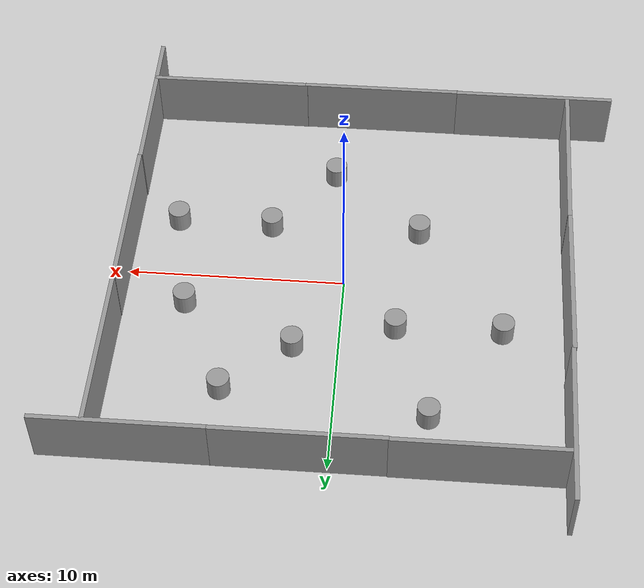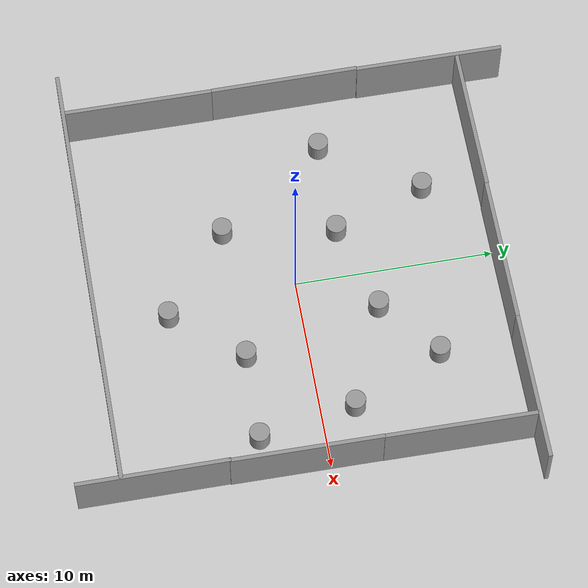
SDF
<sdf version="1.7">
 <world name="default">
  <light name="sun" type="directional">
   <pose>0 0 10 0 -0 0</pose>
   <diffuse>0.8 0.8 0.8 1</diffuse>
   <specular>0.2 0.2 0.2 1</specular>
   <attenuation>
    <range>1000</range>
    <constant>0.9</constant>
    <linear>0.01</linear>
    <quadratic>0.001</quadratic>
   </attenuation>
   <direction>-0.5 0.1 -0.9</direction>
   <spot><inner_angle>0</inner_angle><outer_angle>0</outer_angle><falloff>0</falloff></spot>
  </light>
  <model name="ground_plane">
   <static>1</static>
   <link name="link">
    <collision name="collision">
     <geometry><plane><normal>0 0 1</normal><size>100 100</size></plane></geometry>
     <surface>
      <contact><collide_bitmask>65535</collide_bitmask></contact>
      <friction><ode><mu>100</mu><mu2>50</mu2></ode></friction>
     </surface>
    </collision>
    <visual name="visual">
     <cast_shadows>0</cast_shadows>
     <geometry><plane><normal>0 0 1</normal><size>100 100</size></plane></geometry>
     <material>
      <script><uri>file://media/materials/scripts/gazebo.material</uri><name>Gazebo/Grey</name></script>
     </material>
    </visual>
   </link>
  </model>
  <gravity>0 0 -9.8</gravity>
  <magnetic_field>6e-06 2.3e-05 -4.2e-05</magnetic_field>
  <atmosphere type="adiabatic"/>
  <physics type="ode">
   <max_step_size>0.001</max_step_size>
   <real_time_factor>1</real_time_factor>
   <real_time_update_rate>1000</real_time_update_rate>
  </physics>
  <scene><ambient>0.4 0.4 0.4 1</ambient><background>0.7 0.7 0.7 1</background><shadows>1</shadows></scene>
  <spherical_coordinates>
   <surface_model>EARTH_WGS84</surface_model>
   <latitude_deg>0</latitude_deg>
   <longitude_deg>0</longitude_deg>
   <elevation>0</elevation>
   <heading_deg>0</heading_deg>
  </spherical_coordinates>
  <model name="grey_wall">
   <static>1</static>
   <link name="link">
    <pose>0 0 1.4 0 -0 0</pose>
    <collision name="collision"><geometry><box><size>7.5 0.2 2.8</size></box></geometry></collision>
    <visual name="visual">
     <cast_shadows>0</cast_shadows>
     <geometry><box><size>7.5 0.2 2.8</size></box></geometry>
     <material>
      <script>
       <uri>model://grey_wall/materials/scripts</uri>
       <uri>model://grey_wall/materials/textures</uri>
       <name>vrc/grey_wall</name>
      </script>
     </material>
    </visual>
   </link>
   <pose>-6.28689 10.113 0 0 -0 0</pose>
  </model>
  <model name="grey_wall_0">
   <static>1</static>
   <link name="link">
    <pose>0 0 1.4 0 -0 0</pose>
    <collision name="collision"><geometry><box><size>7.5 0.2 2.8</size></box></geometry></collision>
    <visual name="visual">
     <cast_shadows>0</cast_shadows>
     <geometry><box><size>7.5 0.2 2.8</size></box></geometry>
     <material>
      <script>
       <uri>model://grey_wall/materials/scripts</uri>
       <uri>model://grey_wall/materials/textures</uri>
       <name>vrc/grey_wall</name>
      </script>
     </material>
    </visual>
   </link>
   <pose>1.18422 10.0875 0 0 -0 0</pose>
  </model>
  <model name="grey_wall_1">
   <static>1</static>
   <link name="link">
    <pose>0 0 1.4 0 -0 0</pose>
    <collision name="collision"><geometry><box><size>7.5 0.2 2.8</size></box></geometry></collision>
    <visual name="visual">
     <cast_shadows>0</cast_shadows>
     <geometry><box><size>7.5 0.2 2.8</size></box></geometry>
     <material>
      <script>
       <uri>model://grey_wall/materials/scripts</uri>
       <uri>model://grey_wall/materials/textures</uri>
       <name>vrc/grey_wall</name>
      </script>
     </material>
    </visual>
   </link>
   <pose>8.68504 10.081 0 0 -0 0</pose>
  </model>
  <model name="grey_wall_2">
   <static>1</static>
   <link name="link">
    <pose>0 0 1.4 0 -0 0</pose>
    <collision name="collision"><geometry><box><size>7.5 0.2 2.8</size></box></geometry></collision>
    <visual name="visual">
     <cast_shadows>0</cast_shadows>
     <geometry><box><size>7.5 0.2 2.8</size></box></geometry>
     <material>
      <script>
       <uri>model://grey_wall/materials/scripts</uri>
       <uri>model://grey_wall/materials/textures</uri>
       <name>vrc/grey_wall</name>
      </script>
     </material>
    </visual>
   </link>
   <pose>-8.5477 -10.1263 0 0 -0 0</pose>
  </model>
  <model name="grey_wall_3">
   <static>1</static>
   <link name="link">
    <pose>0 0 1.4 0 -0 0</pose>
    <collision name="collision"><geometry><box><size>7.5 0.2 2.8</size></box></geometry></collision>
    <visual name="visual">
     <cast_shadows>0</cast_shadows>
     <geometry><box><size>7.5 0.2 2.8</size></box></geometry>
     <material>
      <script>
       <uri>model://grey_wall/materials/scripts</uri>
       <uri>model://grey_wall/materials/textures</uri>
       <name>vrc/grey_wall</name>
      </script>
     </material>
    </visual>
   </link>
   <pose>-1.13297 -10.1447 0 0 -0 0</pose>
  </model>
  <model name="grey_wall_4">
   <static>1</static>
   <link name="link">
    <pose>0 0 1.4 0 -0 0</pose>
    <collision name="collision"><geometry><box><size>7.5 0.2 2.8</size></box></geometry></collision>
    <visual name="visual">
     <cast_shadows>0</cast_shadows>
     <geometry><box><size>7.5 0.2 2.8</size></box></geometry>
     <material>
      <script>
       <uri>model://grey_wall/materials/scripts</uri>
       <uri>model://grey_wall/materials/textures</uri>
       <name>vrc/grey_wall</name>
      </script>
     </material>
    </visual>
   </link>
   <pose>6.26462 -10.1329 0 0 -0 0</pose>
  </model>
  <model name="grey_wall_5">
   <static>1</static>
   <link name="link">
    <pose>0 0 1.4 0 -0 0</pose>
    <collision name="collision"><geometry><box><size>7.5 0.2 2.8</size></box></geometry></collision>
    <visual name="visual">
     <cast_shadows>0</cast_shadows>
     <geometry><box><size>7.5 0.2 2.8</size></box></geometry>
     <material>
      <script>
       <uri>model://grey_wall/materials/scripts</uri>
       <uri>model://grey_wall/materials/textures</uri>
       <name>vrc/grey_wall</name>
      </script>
     </material>
    </visual>
   </link>
   <pose>10.0773 6.27833 0 0 0 -1.57864</pose>
  </model>
  <model name="grey_wall_6">
   <static>1</static>
   <link name="link">
    <pose>0 0 1.4 0 -0 0</pose>
    <collision name="collision"><geometry><box><size>7.5 0.2 2.8</size></box></geometry></collision>
    <visual name="visual">
     <cast_shadows>0</cast_shadows>
     <geometry><box><size>7.5 0.2 2.8</size></box></geometry>
     <material>
      <script>
       <uri>model://grey_wall/materials/scripts</uri>
       <uri>model://grey_wall/materials/textures</uri>
       <name>vrc/grey_wall</name>
      </script>
     </material>
    </visual>
   </link>
   <pose>10.017 -1.1874 0 0 0 -1.57589</pose>
  </model>
  <model name="grey_wall_7">
   <static>1</static>
   <link name="link">
    <pose>0 0 1.4 0 -0 0</pose>
    <collision name="collision"><geometry><box><size>7.5 0.2 2.8</size></box></geometry></collision>
    <visual name="visual">
     <cast_shadows>0</cast_shadows>
     <geometry><box><size>7.5 0.2 2.8</size></box></geometry>
     <material>
      <script>
       <uri>model://grey_wall/materials/scripts</uri>
       <uri>model://grey_wall/materials/textures</uri>
       <name>vrc/grey_wall</name>
      </script>
     </material>
    </visual>
   </link>
   <pose>9.96617 -8.60878 0 0 0 -1.57049</pose>
  </model>
  <model name="grey_wall_8">
   <static>1</static>
   <link name="link">
    <pose>0 0 1.4 0 -0 0</pose>
    <collision name="collision"><geometry><box><size>7.5 0.2 2.8</size></box></geometry></collision>
    <visual name="visual">
     <cast_shadows>0</cast_shadows>
     <geometry><box><size>7.5 0.2 2.8</size></box></geometry>
     <material>
      <script>
       <uri>model://grey_wall/materials/scripts</uri>
       <uri>model://grey_wall/materials/textures</uri>
       <name>vrc/grey_wall</name>
      </script>
     </material>
    </visual>
   </link>
   <pose>-10.1766 1.20694 0 0 0 -1.5637</pose>
  </model>
  <model name="grey_wall_9">
   <static>1</static>
   <link name="link">
    <pose>0 0 1.4 0 -0 0</pose>
    <collision name="collision"><geometry><box><size>7.5 0.2 2.8</size></box></geometry></collision>
    <visual name="visual">
     <cast_shadows>0</cast_shadows>
     <geometry><box><size>7.5 0.2 2.8</size></box></geometry>
     <material>
      <script>
       <uri>model://grey_wall/materials/scripts</uri>
       <uri>model://grey_wall/materials/textures</uri>
       <name>vrc/grey_wall</name>
      </script>
     </material>
    </visual>
   </link>
   <pose>-10.1459 -6.29045 0 0 0 -1.57305</pose>
  </model>
  <model name="grey_wall_10">
   <static>1</static>
   <link name="link">
    <pose>0 0 1.4 0 -0 0</pose>
    <collision name="collision"><geometry><box><size>7.5 0.2 2.8</size></box></geometry></collision>
    <visual name="visual">
     <cast_shadows>0</cast_shadows>
     <geometry><box><size>7.5 0.2 2.8</size></box></geometry>
     <material>
      <script>
       <uri>model://grey_wall/materials/scripts</uri>
       <uri>model://grey_wall/materials/textures</uri>
       <name>vrc/grey_wall</name>
      </script>
     </material>
    </visual>
   </link>
   <pose>-10.1485 8.69331 0 0 0 -1.573</pose>
  </model>
  <model name="unit_cylinder">
   <pose>5.02415 6.33398 0.499992 -3e-06 3e-06 0</pose>
   <link name="link">
    <inertial>
     <mass>1</mass>
     <inertia><ixx>0.145833</ixx><ixy>0</ixy><ixz>0</ixz><iyy>0.145833</iyy><iyz>0</iyz><izz>0.125</izz></inertia>
    </inertial>
    <collision name="collision">
     <geometry><cylinder><radius>0.5</radius><length>1</length></cylinder></geometry>
    </collision>
    <visual name="visual">
     <geometry><cylinder><radius>0.5</radius><length>1</length></cylinder></geometry>
     <material>
      <script><name>Gazebo/Grey</name><uri>file://media/materials/scripts/gazebo.material</uri></script>
     </material>
    </visual>
   </link>
  </model>
  <model name="unit_cylinder_0">
   <pose>2.05091 3.8177 0.499998 3e-06 -3e-06 0</pose>
   <link name="link">
    <inertial>
     <mass>1</mass>
     <inertia><ixx>0.145833</ixx><ixy>0</ixy><ixz>0</ixz><iyy>0.145833</iyy><iyz>0</iyz><izz>0.125</izz></inertia>
    </inertial>
    <collision name="collision">
     <geometry><cylinder><radius>0.5</radius><length>1</length></cylinder></geometry>
    </collision>
    <visual name="visual">
     <geometry><cylinder><radius>0.5</radius><length>1</length></cylinder></geometry>
     <material>
      <script><name>Gazebo/Grey</name><uri>file://media/materials/scripts/gazebo.material</uri></script>
     </material>
    </visual>
   </link>
  </model>
  <model name="unit_cylinder_1">
   <pose>8.0394 -3.18698 0.499992 -3e-06 3e-06 0</pose>
   <link name="link">
    <inertial>
     <mass>1</mass>
     <inertia><ixx>0.145833</ixx><ixy>0</ixy><ixz>0</ixz><iyy>0.145833</iyy><iyz>0</iyz><izz>0.125</izz></inertia>
    </inertial>
    <collision name="collision">
     <geometry><cylinder><radius>0.5</radius><length>1</length></cylinder></geometry>
    </collision>
    <visual name="visual">
     <geometry><cylinder><radius>0.5</radius><length>1</length></cylinder></geometry>
     <material>
      <script><name>Gazebo/Grey</name><uri>file://media/materials/scripts/gazebo.material</uri></script>
     </material>
    </visual>
   </link>
  </model>
  <model name="unit_cylinder_2">
   <pose>7.14083 1.70606 0.499998 3e-06 -4e-06 0</pose>
   <link name="link">
    <inertial>
     <mass>1</mass>
     <inertia><ixx>0.145833</ixx><ixy>0</ixy><ixz>0</ixz><iyy>0.145833</iyy><iyz>0</iyz><izz>0.125</izz></inertia>
    </inertial>
    <collision name="collision">
     <geometry><cylinder><radius>0.5</radius><length>1</length></cylinder></geometry>
    </collision>
    <visual name="visual">
     <geometry><cylinder><radius>0.5</radius><length>1</length></cylinder></geometry>
     <material>
      <script><name>Gazebo/Grey</name><uri>file://media/materials/scripts/gazebo.material</uri></script>
     </material>
    </visual>
   </link>
  </model>
  <model name="unit_cylinder_3">
   <pose>0.822314 -6.53157 0.499998 3e-06 -4e-06 0</pose>
   <link name="link">
    <inertial>
     <mass>1</mass>
     <inertia><ixx>0.145833</ixx><ixy>0</ixy><ixz>0</ixz><iyy>0.145833</iyy><iyz>0</iyz><izz>0.125</izz></inertia>
    </inertial>
    <collision name="collision">
     <geometry><cylinder><radius>0.5</radius><length>1</length></cylinder></geometry>
    </collision>
    <visual name="visual">
     <geometry><cylinder><radius>0.5</radius><length>1</length></cylinder></geometry>
     <material>
      <script><name>Gazebo/Grey</name><uri>file://media/materials/scripts/gazebo.material</uri></script>
     </material>
    </visual>
   </link>
  </model>
  <model name="unit_cylinder_4">
   <pose>-3.33471 -3.16385 0.499992 -3e-06 -4e-06 -0</pose>
   <link name="link">
    <inertial>
     <mass>1</mass>
     <inertia><ixx>0.145833</ixx><ixy>0</ixy><ixz>0</ixz><iyy>0.145833</iyy><iyz>0</iyz><izz>0.125</izz></inertia>
    </inertial>
    <collision name="collision">
     <geometry><cylinder><radius>0.5</radius><length>1</length></cylinder></geometry>
    </collision>
    <visual name="visual">
     <geometry><cylinder><radius>0.5</radius><length>1</length></cylinder></geometry>
     <material>
      <script><name>Gazebo/Grey</name><uri>file://media/materials/scripts/gazebo.material</uri></script>
     </material>
    </visual>
   </link>
  </model>
  <model name="unit_cylinder_5">
   <pose>-4.15812 7.21147 0.499993 -3e-06 -3e-06 0</pose>
   <link name="link">
    <inertial>
     <mass>1</mass>
     <inertia><ixx>0.145833</ixx><ixy>0</ixy><ixz>0</ixz><iyy>0.145833</iyy><iyz>0</iyz><izz>0.125</izz></inertia>
    </inertial>
    <collision name="collision">
     <geometry><cylinder><radius>0.5</radius><length>1</length></cylinder></geometry>
    </collision>
    <visual name="visual">
     <geometry><cylinder><radius>0.5</radius><length>1</length></cylinder></geometry>
     <material>
      <script><name>Gazebo/Grey</name><uri>file://media/materials/scripts/gazebo.material</uri></script>
     </material>
    </visual>
   </link>
  </model>
  <model name="unit_cylinder_6">
   <pose>-7.30692 2.45277 0.499997 3e-06 4e-06 -0</pose>
   <link name="link">
    <inertial>
     <mass>1</mass>
     <inertia><ixx>0.145833</ixx><ixy>0</ixy><ixz>0</ixz><iyy>0.145833</iyy><iyz>0</iyz><izz>0.125</izz></inertia>
    </inertial>
    <collision name="collision">
     <geometry><cylinder><radius>0.5</radius><length>1</length></cylinder></geometry>
    </collision>
    <visual name="visual">
     <geometry><cylinder><radius>0.5</radius><length>1</length></cylinder></geometry>
     <material>
      <script><name>Gazebo/Grey</name><uri>file://media/materials/scripts/gazebo.material</uri></script>
     </material>
    </visual>
   </link>
  </model>
  <model name="unit_cylinder_7">
   <pose>-2.48996 2.50861 0.499993 -3e-06 -4e-06 -0</pose>
   <link name="link">
    <inertial>
     <mass>1</mass>
     <inertia><ixx>0.145833</ixx><ixy>0</ixy><ixz>0</ixz><iyy>0.145833</iyy><iyz>0</iyz><izz>0.125</izz></inertia>
    </inertial>
    <collision name="collision">
     <geometry><cylinder><radius>0.5</radius><length>1</length></cylinder></geometry>
    </collision>
    <visual name="visual">
     <geometry><cylinder><radius>0.5</radius><length>1</length></cylinder></geometry>
     <material>
      <script><name>Gazebo/Grey</name><uri>file://media/materials/scripts/gazebo.material</uri></script>
     </material>
    </visual>
   </link>
  </model>
  <model name="unit_cylinder_8">
   <pose>3.61917 -3.10218 0.499997 3e-06 4e-06 -0</pose>
   <link name="link">
    <inertial>
     <mass>1</mass>
     <inertia><ixx>0.145833</ixx><ixy>0</ixy><ixz>0</ixz><iyy>0.145833</iyy><iyz>0</iyz><izz>0.125</izz></inertia>
    </inertial>
    <collision name="collision">
     <geometry><cylinder><radius>0.5</radius><length>1</length></cylinder></geometry>
    </collision>
    <visual name="visual">
     <geometry><cylinder><radius>0.5</radius><length>1</length></cylinder></geometry>
     <material>
      <script><name>Gazebo/Grey</name><uri>file://media/materials/scripts/gazebo.material</uri></script>
     </material>
    </visual>
   </link>
  </model>
 </world>
</sdf>
